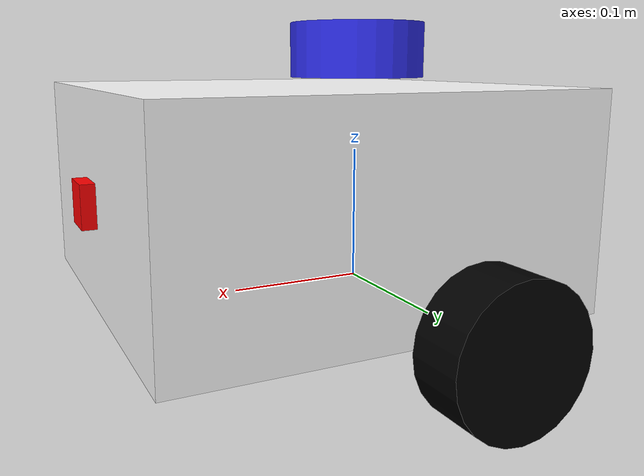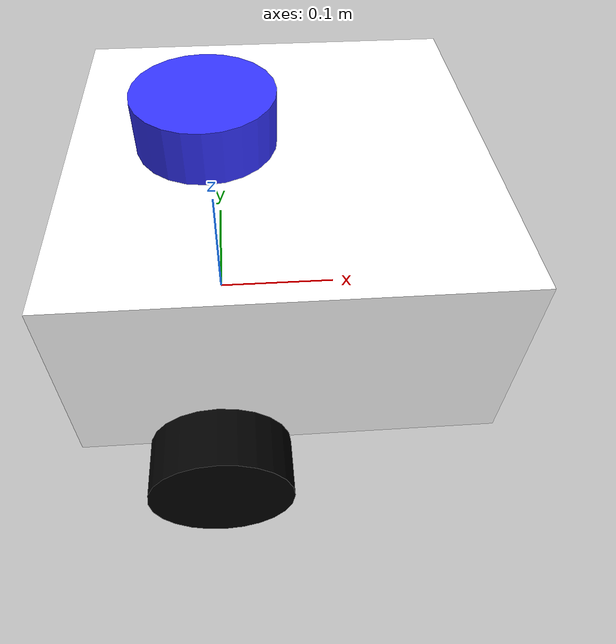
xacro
<?xml version="1.0"?>
<robot name="robot" xmlns:xacro="http://www.ros.org/wiki/xacro">
    <xacro:include filename="links.urdf.xacro" />
    <xacro:include filename="lidar.urdf.xacro" />
    <xacro:include filename="depth_camera.urdf.xacro" />
    <xacro:include filename="joints.urdf.xacro" />
    <xacro:include filename="ros2_control.xacro" />
</robot>

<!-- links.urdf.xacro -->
<robot name="robot" xmlns:xacro="http://www.ros.org/wiki/xacro">
    <xacro:include filename="materials.urdf.xacro" />
    <xacro:include filename="inertia_macros.xacro" />

    <link name="base_link"></link>

    <link name="chassis_link">
        <visual>
            <origin xyz="0.15 0 0.075" rpy="0 0 0" />
            <geometry>
                <box size="0.3 0.3 0.15" />
            </geometry>
            <material name="white" />
        </visual>
        <collision>
            <origin xyz="0.15 0 0.075" rpy="0 0 0" />
            <geometry>
                <box size="0.3 0.3 0.15" />
            </geometry>
        </collision>
        <xacro:inertial_cuboid mass="0.5" x="0.3" y="0.3" z="0.15">
            <origin xyz="0.15 0 0.075" rpy="0 0 0" />
        </xacro:inertial_cuboid>
    </link>

    <link name="left_wheel_link">
        <visual>
            <geometry>
                <cylinder radius="0.05" length="0.04" />
            </geometry>
            <material name="black" />
        </visual>
        <collision>
            <geometry>
                <cylinder radius="0.05" length="0.04" />
            </geometry>
        </collision>
        <xacro:inertial_cylinder mass="0.1" length="0.04" radius="0.05">
            <origin xyz="0 0 0" rpy="0 0 0" />
        </xacro:inertial_cylinder>
    </link>

    <link name="right_wheel_link">
        <visual>
            <geometry>
                <cylinder radius="0.05" length="0.04" />
            </geometry>
            <material name="black" />
        </visual>
        <collision>
            <geometry>
                <cylinder radius="0.05" length="0.04" />
            </geometry>
        </collision>
        <xacro:inertial_cylinder mass="0.1" length="0.04" radius="0.05">
            <origin xyz="0 0 0" rpy="0 0 0" />
        </xacro:inertial_cylinder>
    </link>

    <link name="caster_link">
        <visual>
            <geometry>
                <sphere radius="0.05" />
            </geometry>
            <material name="orange" />
        </visual>
        <collision>
            <geometry>
                <sphere radius="0.05" />
            </geometry>
        </collision>
        <xacro:inertial_sphere mass="0.1" radius="0.05">
            <origin xyz="0 0 0" rpy="0 0 0" />
        </xacro:inertial_sphere>
    </link>

    <gazebo reference="chassis_link">
        <material>Gazebo/SkyBlue</material>
    </gazebo>
    <gazebo reference="right_wheel_link">
        <material>Gazebo/Black</material>
    </gazebo>
    <gazebo reference="left_wheel_link">
        <material>Gazebo/Black</material>
    </gazebo>
    <gazebo reference="caster_link">
        <material>Gazebo/Grey</material>
        <mu1 value="0.001" />
        <mu2 value="0.001" />
    </gazebo>

</robot>

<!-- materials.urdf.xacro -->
<robot name="robot" xmlns:xacro="http://www.ros.org/wiki/xacro">

    <material name="white">
        <color rgba="1 1 1 1" />
    </material>

    <material name="orange">
        <color rgba="1 0.3 0.1 1" />
    </material>

    <material name="blue">
        <color rgba="0.2 0.2 1 1" />
    </material>

    <material name="black">
        <color rgba="0 0 0 1" />
    </material>

    <material name="red">
        <color rgba="1 0 0 1" />
    </material>
</robot>

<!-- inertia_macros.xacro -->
<robot xmlns:xacro="http://www.ros.org/wiki/xacro">

    <!-- Specify some standard inertial calculations
    https://en.wikipedia.org/wiki/List_of_moments_of_inertia -->
    <!-- These make use of xacro's mathematical functionality -->

    <xacro:macro name="inertial_sphere" params="mass radius *origin">
        <inertial>
            <xacro:insert_block name="origin" />
            <mass value="${mass}" />
            <inertia ixx="${(2/5) * mass * (radius*radius)}" ixy="0.0" ixz="0.0"
                iyy="${(2/5) * mass * (radius*radius)}" iyz="0.0"
                izz="${(2/5) * mass * (radius*radius)}" />
        </inertial>
    </xacro:macro>

    <xacro:macro name="inertial_cuboid" params="mass x y z *origin">
        <inertial>
            <xacro:insert_block name="origin" />
            <mass value="${mass}" />
            <inertia ixx="${(1/12) * mass * (y*y+z*z)}" ixy="0.0" ixz="0.0"
                iyy="${(1/12) * mass * (x*x+z*z)}" iyz="0.0"
                izz="${(1/12) * mass * (x*x+y*y)}" />
        </inertial>
    </xacro:macro>

    <xacro:macro name="inertial_cylinder" params="mass length radius *origin">
        <inertial>
            <xacro:insert_block name="origin" />
            <mass value="${mass}" />
            <inertia ixx="${(1/12) * mass * (3*radius*radius + length*length)}" ixy="0.0" ixz="0.0"
                iyy="${(1/12) * mass * (3*radius*radius + length*length)}" iyz="0.0"
                izz="${(1/2) * mass * (radius*radius)}" />
        </inertial>
    </xacro:macro>

</robot>

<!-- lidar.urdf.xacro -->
<robot name="robot" xmlns:xacro="http://www.ros.org/wiki/xacro">
    <joint name="lidar_joint" type="fixed">
        <parent link="chassis_link" />
        <child link="lidar_link" />
        <origin xyz="0.1 0 0.175" rpy="0 0 0" />
    </joint>

    <link name="lidar_link">
        <visual>
            <geometry>
                <cylinder radius="0.05" length="0.04" />
            </geometry>
            <material name="blue" />
        </visual>
        <collision>
            <geometry>
                <cylinder radius="0.05" length="0.04" />
            </geometry>
        </collision>
        <xacro:inertial_cylinder mass="0.1" length="0.04" radius="0.05">
            <origin xyz="0 0 0" rpy="0 0 0" />
        </xacro:inertial_cylinder>
    </link>

    <gazebo reference="lidar_link">
        <sensor name="laser" type="ray">
            <pose> 0 0 0 0 0 0 </pose>
            <visualize>false</visualize>
            <update_rate>10</update_rate>
            <ray>
                <scan>
                    <horizontal>
                        <samples>360</samples>
                        <resolution>1</resolution>
                        <min_angle>-3.14</min_angle>
                        <max_angle>3.14</max_angle>
                    </horizontal>
                </scan>
                <range>
                    <min>0.3</min>
                    <max>12</max>
                    <resolution>0.01</resolution>
                </range>
            </ray>
            <plugin name="laser_controller" filename="libgazebo_ros_ray_sensor.so">
                <ros>
                    <argument>--ros-args -r ~/out:=scan</argument>
                </ros>
                <output_type>sensor_msgs/LaserScan</output_type>
                <frame_name>lidar_link</frame_name>
            </plugin>
        </sensor>
    </gazebo>

</robot>

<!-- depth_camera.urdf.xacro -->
<robot name="robot" xmlns:xacro="http://www.ros.org/wiki/xacro">

    <link name="camera_link">
        <visual>
            <geometry>
                <box size="0.01 0.03 0.03" />
            </geometry>
            <material name="red" />
        </visual>
        <collision>
            <geometry>
                <box size="0.01 0.03 0.03" />
            </geometry>
        </collision>
        <xacro:inertial_cuboid mass="0.01" x="0.01" y="0.03" z="0.03">
            <origin xyz="0 0 0" rpy="0 0 0" />
        </xacro:inertial_cuboid>
    </link>

    <joint name="camera_joint" type="fixed">
        <parent link="chassis_link" />
        <child link="camera_link" />
        <origin xyz="0.305 0 0.075" rpy="0 0 0" />
    </joint>

    <gazebo reference="camera_link">
        <material>Gazebo/Red</material>
    </gazebo>

    <link name="camera_link_optical"></link>

    <joint name="camera_optical_joint" type="fixed">
        <parent link="camera_link" />
        <child link="camera_link_optical" />
        <origin xyz="0 0 0" rpy="${-pi / 2} 0 ${-pi / 2}" />
    </joint>

    <gazebo reference="camera_link">
        <sensor name="camera" type="depth">
            <pose>0 0 0 0 0 0</pose>
            <visualize>true</visualize>
            <update_rate>10</update_rate>
            <camera>
                <horizontal_fov>1.089</horizontal_fov>
                <image>
                    <format>B8R8G8</format>
                    <width>640</width>
                    <height>480</height>
                </image>
                <clip>
                    <near>0.05</near>
                    <far>8.0</far>
                </clip>
            </camera>
            <plugin name="camera_controller" filename="libgazebo_ros_camera.so">
                <frame_name>camera_link_optical</frame_name>
            </plugin>
        </sensor>
    </gazebo>
</robot>

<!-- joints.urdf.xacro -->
<robot name="robot" xmlns:xacro="http://www.ros.org/wiki/xacro">

    <joint name="chassis_joint" type="fixed">
        <parent link="base_link" />
        <child link="chassis_link" />
        <origin xyz="-0.1 0 0" rpy="0 0 0" />
    </joint>

    <joint name="left_wheel_joint" type="continuous">
        <parent link="base_link" />
        <child link="left_wheel_link" />
        <origin xyz="0 0.175 0" rpy="${-pi/2} 0 0"/>
        <axis xyz="0 0 1" />
    </joint>

    <joint name="right_wheel_joint" type="continuous">
        <parent link="base_link" />
        <child link="right_wheel_link" />
        <origin xyz="0 -0.175 0" rpy="${pi/2} 0 0" />
        <axis xyz="0 0 -1" />
    </joint>

    <joint name="caster_wheel_joint" type="fixed">
        <parent link="chassis_link"/>
        <child link="caster_link" />
        <origin xyz="0.24 0 0" rpy="0 0 0" />
    </joint>

</robot>
